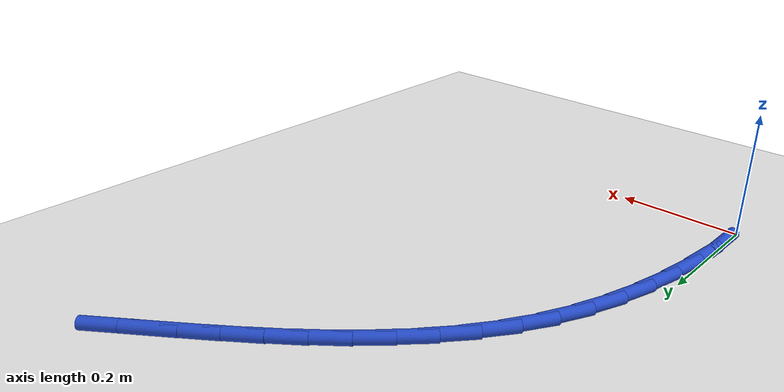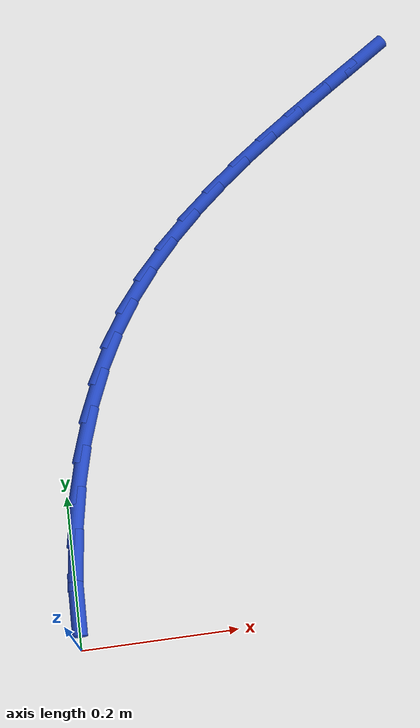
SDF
<sdf version="1.6">
 <world name="default">
  <model name="ground_plane">
   <static>1</static>
   <link name="link">
    <collision name="collision">
     <geometry><plane><normal>0 0 1</normal><size>100 100</size></plane></geometry>
     <surface><friction><ode><mu>100</mu><mu2>50</mu2></ode></friction></surface>
    </collision>
    <visual name="visual">
     <cast_shadows>0</cast_shadows>
     <geometry><plane><normal>0 0 1</normal><size>100 100</size></plane></geometry>
     <material>
      <script><uri>file://media/materials/scripts/gazebo.material</uri><name>Gazebo/WhiteGlow</name></script>
     </material>
    </visual>
   </link>
  </model>
  <model name="line">
   <link name="link_2">
    <pose>0.004403797087608928 0.11299831743720173 0.01 0 1.57 1.4540592483959753</pose>
    <collision name="collision">
     <geometry><cylinder><radius>0.01</radius><length>0.08</length></cylinder></geometry>
    </collision>
    <visual name="visual">
     <material>
      <script><name>Gazebo/Blue</name><uri>file://media/materials/scripts/gazebo.material</uri></script>
     </material>
     <geometry><cylinder><radius>0.01</radius><length>0.08</length></cylinder></geometry>
    </visual>
   </link>
   <link name="link_3">
    <pose>0.010947367318446609 0.16879737471647058 0.01 0 1.57 1.3959237891035772</pose>
    <collision name="collision">
     <geometry><cylinder><radius>0.01</radius><length>0.08</length></cylinder></geometry>
    </collision>
    <visual name="visual">
     <material>
      <script><name>Gazebo/Blue</name><uri>file://media/materials/scripts/gazebo.material</uri></script>
     </material>
     <geometry><cylinder><radius>0.01</radius><length>0.08</length></cylinder></geometry>
    </visual>
   </link>
   <link name="link_4">
    <pose>0.020638164616032392 0.22364768234278293 0.01 0 1.57 1.3321102213423914</pose>
    <collision name="collision">
     <geometry><cylinder><radius>0.01</radius><length>0.08</length></cylinder></geometry>
    </collision>
    <visual name="visual">
     <material>
      <script><name>Gazebo/Blue</name><uri>file://media/materials/scripts/gazebo.material</uri></script>
     </material>
     <geometry><cylinder><radius>0.01</radius><length>0.08</length></cylinder></geometry>
    </visual>
   </link>
   <link name="link_5">
    <pose>0.033665773436910754 0.2771877287960874 0.01 0 1.57 1.2618603265030395</pose>
    <collision name="collision">
     <geometry><cylinder><radius>0.01</radius><length>0.08</length></cylinder></geometry>
    </collision>
    <visual name="visual">
     <material>
      <script><name>Gazebo/Blue</name><uri>file://media/materials/scripts/gazebo.material</uri></script>
     </material>
     <geometry><cylinder><radius>0.01</radius><length>0.08</length></cylinder></geometry>
    </visual>
   </link>
   <link name="link_6">
    <pose>0.0502197782376262 0.3290560025563328 0.01 0 1.57 1.184491393387525</pose>
    <collision name="collision">
     <geometry><cylinder><radius>0.01</radius><length>0.08</length></cylinder></geometry>
    </collision>
    <visual name="visual">
     <material>
      <script><name>Gazebo/Blue</name><uri>file://media/materials/scripts/gazebo.material</uri></script>
     </material>
     <geometry><cylinder><radius>0.01</radius><length>0.08</length></cylinder></geometry>
    </visual>
   </link>
   <link name="link_7">
    <pose>0.07048976347472315 0.37889099210346755 0.01 0 1.57 1.0994977875731533</pose>
    <collision name="collision">
     <geometry><cylinder><radius>0.01</radius><length>0.08</length></cylinder></geometry>
    </collision>
    <visual name="visual">
     <material>
      <script><name>Gazebo/Blue</name><uri>file://media/materials/scripts/gazebo.material</uri></script>
     </material>
     <geometry><cylinder><radius>0.01</radius><length>0.08</length></cylinder></geometry>
    </visual>
   </link>
   <link name="link_8">
    <pose>0.09466531360474612 0.42633118591744046 0.01 0 1.57 1.0083164635019592</pose>
    <collision name="collision">
     <geometry><cylinder><radius>0.01</radius><length>0.08</length></cylinder></geometry>
    </collision>
    <visual name="visual">
     <material>
      <script><name>Gazebo/Blue</name><uri>file://media/materials/scripts/gazebo.material</uri></script>
     </material>
     <geometry><cylinder><radius>0.01</radius><length>0.08</length></cylinder></geometry>
    </visual>
   </link>
   <link name="link_9">
    <pose>0.12287481623852477 0.4710790856668135 0.01 0 1.57 0.9222763427339649</pose>
    <collision name="collision">
     <geometry><cylinder><radius>0.01</radius><length>0.08</length></cylinder></geometry>
    </collision>
    <visual name="visual">
     <material>
      <script><name>Gazebo/Blue</name><uri>file://media/materials/scripts/gazebo.material</uri></script>
     </material>
     <geometry><cylinder><radius>0.01</radius><length>0.08</length></cylinder></geometry>
    </visual>
   </link>
   <link name="link_10">
    <pose>0.15484250028851806 0.5132599515248776 0.01 0 1.57 0.8468171278368232</pose>
    <collision name="collision">
     <geometry><cylinder><radius>0.01</radius><length>0.08</length></cylinder></geometry>
    </collision>
    <visual name="visual">
     <material>
      <script><name>Gazebo/Blue</name><uri>file://media/materials/scripts/gazebo.material</uri></script>
     </material>
     <geometry><cylinder><radius>0.01</radius><length>0.08</length></cylinder></geometry>
    </visual>
   </link>
   <link name="link_11">
    <pose>0.1901287040357465 0.5531704767147759 0.01 0 1.57 0.7824123495580604</pose>
    <collision name="collision">
     <geometry><cylinder><radius>0.01</radius><length>0.08</length></cylinder></geometry>
    </collision>
    <visual name="visual">
     <material>
      <script><name>Gazebo/Blue</name><uri>file://media/materials/scripts/gazebo.material</uri></script>
     </material>
     <geometry><cylinder><radius>0.01</radius><length>0.08</length></cylinder></geometry>
    </visual>
   </link>
   <link name="link_12">
    <pose>0.22829329801579265 0.5911078437312246 0.01 0 1.57 0.7289758906694034</pose>
    <collision name="collision">
     <geometry><cylinder><radius>0.01</radius><length>0.08</length></cylinder></geometry>
    </collision>
    <visual name="visual">
     <material>
      <script><name>Gazebo/Blue</name><uri>file://media/materials/scripts/gazebo.material</uri></script>
     </material>
     <geometry><cylinder><radius>0.01</radius><length>0.08</length></cylinder></geometry>
    </visual>
   </link>
   <link name="link_13">
    <pose>0.26889615276423884 0.6273692350689396 0.01 0 1.57 0.6861124942097897</pose>
    <collision name="collision">
     <geometry><cylinder><radius>0.01</radius><length>0.08</length></cylinder></geometry>
    </collision>
    <visual name="visual">
     <material>
      <script><name>Gazebo/Blue</name><uri>file://media/materials/scripts/gazebo.material</uri></script>
     </material>
     <geometry><cylinder><radius>0.01</radius><length>0.08</length></cylinder></geometry>
    </visual>
   </link>
   <link name="link_14">
    <pose>0.31149713881666735 0.6622518332226369 0.01 0 1.57 0.6533087242329414</pose>
    <collision name="collision">
     <geometry><cylinder><radius>0.01</radius><length>0.08</length></cylinder></geometry>
    </collision>
    <visual name="visual">
     <material>
      <script><name>Gazebo/Blue</name><uri>file://media/materials/scripts/gazebo.material</uri></script>
     </material>
     <geometry><cylinder><radius>0.01</radius><length>0.08</length></cylinder></geometry>
    </visual>
   </link>
   <link name="link_15">
    <pose>0.35565612670866076 0.6960528206870322 0.01 0 1.57 0.6300653723655951</pose>
    <collision name="collision">
     <geometry><cylinder><radius>0.01</radius><length>0.08</length></cylinder></geometry>
    </collision>
    <visual name="visual">
     <material>
      <script><name>Gazebo/Blue</name><uri>file://media/materials/scripts/gazebo.material</uri></script>
     </material>
     <geometry><cylinder><radius>0.01</radius><length>0.08</length></cylinder></geometry>
    </visual>
   </link>
   <link name="link_16">
    <pose>0.40093298697580143 0.729069379956842 0.01 0 1.57 0.6159800550137385</pose>
    <collision name="collision">
     <geometry><cylinder><radius>0.01</radius><length>0.08</length></cylinder></geometry>
    </collision>
    <visual name="visual">
     <material>
      <script><name>Gazebo/Blue</name><uri>file://media/materials/scripts/gazebo.material</uri></script>
     </material>
     <geometry><cylinder><radius>0.01</radius><length>0.08</length></cylinder></geometry>
    </visual>
   </link>
   <link name="link_17">
    <pose>0.44688759015367197 0.761598693526782 0.01 0 1.57 0.610794230390742</pose>
    <collision name="collision">
     <geometry><cylinder><radius>0.01</radius><length>0.08</length></cylinder></geometry>
    </collision>
    <visual name="visual">
     <material>
      <script><name>Gazebo/Blue</name><uri>file://media/materials/scripts/gazebo.material</uri></script>
     </material>
     <geometry><cylinder><radius>0.01</radius><length>0.08</length></cylinder></geometry>
    </visual>
   </link>
   <link name="link_18">
    <pose>0.49307980677785435 0.7939379438915684 0.01 0 1.57 0.6144169412218355</pose>
    <collision name="collision">
     <geometry><cylinder><radius>0.01</radius><length>0.08</length></cylinder></geometry>
    </collision>
    <visual name="visual">
     <material>
      <script><name>Gazebo/Blue</name><uri>file://media/materials/scripts/gazebo.material</uri></script>
     </material>
     <geometry><cylinder><radius>0.01</radius><length>0.08</length></cylinder></geometry>
    </visual>
   </link>
   <link name="link_141">
    <pose>0.0007697650709870257 0.05662865302698468 0.01 0 1.57 1.5572039557264412</pose>
    <collision name="collision">
     <geometry><cylinder><radius>0.01</radius><length>0.08</length></cylinder></geometry>
    </collision>
    <visual name="visual">
     <material>
      <script><name>Gazebo/Blue</name><uri>file://media/materials/scripts/gazebo.material</uri></script>
     </material>
     <geometry><cylinder><radius>0.01</radius><length>0.08</length></cylinder></geometry>
    </visual>
   </link>
  </model>
 </world>
</sdf>
